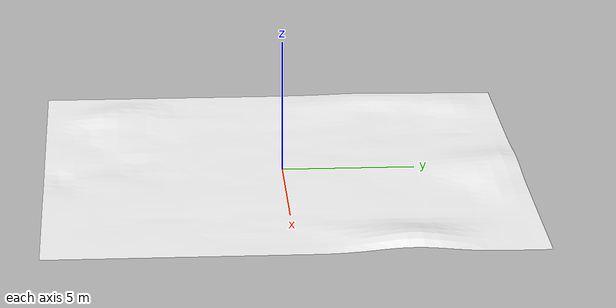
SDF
<?xml version="1.0"?>
<sdf version="1.7">
  <model name="flat_terrain_model">
    <static>true</static>

    <link name="link">
      <visual name="visual">
        <geometry>
          <mesh>
            <uri>model://flat_terrain_model/meshes/flatgrass.dae</uri>
          </mesh>
        </geometry>

        <material>
          <ambient>1.0 1.0 1.0 1</ambient>
          <diffuse>1.0 1.0 1.0 1</diffuse>
          <specular>0.2 0.2 0.2 1</specular>
          <emissive>0 0 0 1</emissive>

          <pbr>
            <metal>
              <albedo_map>model://flat_terrain_model/materials/textures/foresttexture2.png</albedo_map>
            </metal>
          </pbr>
        </material>
      </visual>

      <collision name="collision">
        <geometry>
          <mesh>
            <uri>model://flat_terrain_model/meshes/flatgrass.dae</uri>
          </mesh>
        </geometry>
      </collision>
    </link>
  </model>
</sdf>
